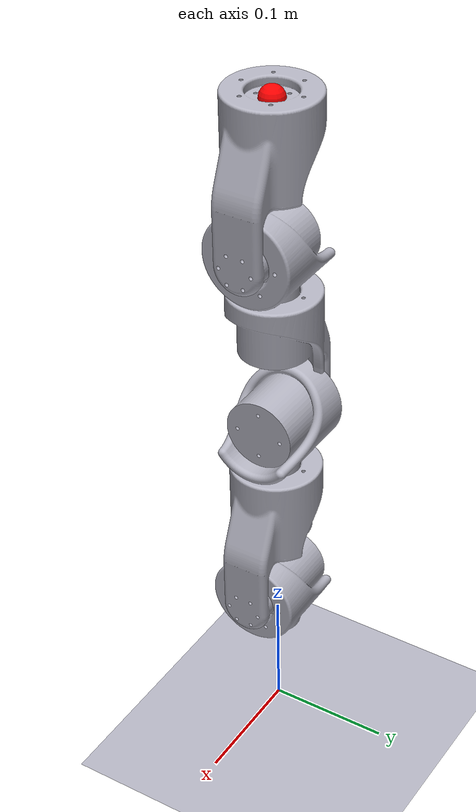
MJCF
<mujoco model="7DOF_RoboticArm_CAD_Updated">
    <compiler angle="radian" coordinate="local" meshdir="./"/>

    <option timestep="0.001" gravity="0 0 -9.81"/>

    <default>
        <joint damping="0.1"/>
        <geom type="cylinder" rgba="0.7 0.7 0.75 1"/>
    </default>

    <asset>
        <material name="robot_metal" rgba="0.7 0.7 0.75 1" specular="0.8" shininess="0.9"/>
        <material name="joint_dark" rgba="0.3 0.3 0.3 1" specular="0.9" shininess="0.9"/>
        <texture name="grid" type="2d" builtin="checker" width="512" height="512"
                 rgb1="0.2 0.2 0.2" rgb2="0.3 0.3 0.3"/>
        <material name="grid" texture="grid" texrepeat="8 8" reflectance="0.1"/>

        <!-- Mesh definitions -->
        <mesh name="link2_visual" file="Link2.stl" scale="0.001 0.001 0.001"/>
        <mesh name="link3_visual" file="Link3.stl" scale="0.001 0.001 0.001"/>
        <mesh name="link4_visual" file="Link4.stl" scale="0.001 0.001 0.001"/>
        <mesh name="link5_visual" file="Link5.stl" scale="0.001 0.001 0.001"/>
        <mesh name="link6_visual" file="Link6.stl" scale="0.001 0.001 0.001"/>
        <mesh name="link7_visual" file="Link7.stl" scale="0.001 0.001 0.001"/>
    </asset>

    <worldbody>
        <geom name="ground" type="plane" size="2 2 0.01" material="grid" pos="0 0 0"/>
        <light directional="true" pos="0 0 3" dir="0 0 -1" diffuse="0.8 0.8 0.8"/>
        <light directional="true" pos="1 1 2" dir="-0.5 -0.5 -1" diffuse="0.4 0.4 0.4"/>

        <!-- Link 2 - Joint1_CS -->
        <body name="link2" pos="0 0 0.08705">
            <joint name="joint_1" type="hinge" pos="0 0 0" axis="0 0 1"
                  />

            <!-- Visual mesh (no collision) -->
            <geom type="mesh" mesh="link2_visual"
                  contype="0" conaffinity="0" material="robot_metal"/>

            <!-- Collision cylinder (invisible) -->
            <geom type="cylinder" size="0.03 0.02362"
                  pos="0.00117 0 0.04602"
                  contype="1" conaffinity="1" rgba="0 0 0 0"/>

            <!-- Inertial - Joint1_CS -->
            <!-- Mass: 416.29g = 0.41629 kg -->
            <!-- COM: (1.17, 0.00, 46.02) mm = (0.00117, 0, 0.04602) m -->
            <!-- Lxx=196458.76, Lyy=221717.30, Lzz=214067.18 g·mm² -->
            <!-- Off-diagonal: Lxy=-0.31, Lxz=4287.79, Lyz=-0.43 g·mm² -->
            <inertial pos="0.00117 0 0.04602" mass="0.41629"
                      fullinertia="1.96459e-4 2.21717e-4 2.14067e-4 -3.1e-10 4.28779e-6 -4.3e-10"/>

            <!-- Link 3 - Joint2_CS -->
            <body name="link3" pos="0.02875 0 0.04725">
                <joint name="joint_2" type="hinge" pos="0 0 0" axis="1 0 0"
                       />

                <geom type="mesh" mesh="link3_visual"
                      contype="0" conaffinity="0" material="robot_metal"/>

                <geom type="cylinder" size="0.028 0.056375"
                      pos="-0.02576 0 0.08185"
                      contype="1" conaffinity="1" rgba="0 0 0 0"/>

                <!-- Inertial - Joint2_CS -->
                <!-- Mass: 431.84g = 0.43184 kg -->
                <!-- COM: (-25.76, 0.00, 81.85) mm = (-0.02576, 0, 0.08185) m -->
                <!-- Lxx=294317.80, Lyy=328155.47, Lzz=225828.11 g·mm² -->
                <!-- Off-diagonal: Lxy=0.90, Lxz=-52978.97, Lyz=0.31 g·mm² -->
                <inertial pos="-0.02576 0 0.08185" mass="0.43184"
                          fullinertia="2.94318e-4 3.28155e-4 2.25828e-4 9.0e-10 -5.29790e-5 3.1e-10"/>

                <!-- Link 4 - Joint3_CS -->
                <body name="link4" pos="-0.02875 0 0.11275">
                    <joint name="joint_3" type="hinge" pos="0 0 0" axis="0 0 1"
                           />

                    <geom type="mesh" mesh="link4_visual"
                          contype="0" conaffinity="0" material="joint_dark"/>

                    <geom type="cylinder" size="0.025 0.0236125"
                          pos="-0.00220 0 0.04598"
                          contype="1" conaffinity="1" rgba="0 0 0 0"/>

                    <!-- Inertial - Joint3_CS -->
                    <!-- Mass: 403.30g = 0.40330 kg -->
                    <!-- COM: (-2.20, 0.00, 45.98) mm = (-0.00220, 0, 0.04598) m -->
                    <!-- Lxx=192037.50, Lyy=206312.16, Lzz=198682.40 g·mm² -->
                    <!-- Off-diagonal: Lxy=-0.24, Lxz=-4815.60, Lyz=0.43 g·mm² -->
                    <inertial pos="-0.00220 0 0.04598" mass="0.40330"
                              fullinertia="1.92038e-4 2.06312e-4 1.98682e-4 -2.4e-10 -4.81560e-6 4.3e-10"/>

                    <!-- Link 5 - Joint4_CS -->
                    <body name="link5" pos="-0.02805 0 0.04725">
                        <joint name="joint_4" type="hinge" pos="0 0 0" axis="1 0 0"
                               />

                        <geom type="mesh" mesh="link5_visual"
                              contype="0" conaffinity="0" material="robot_metal"/>

                        <geom type="cylinder" size="0.022 0.056"
                              pos="0.02442 0 0.08532"
                              contype="1" conaffinity="1" rgba="0 0 0 0"/>

                        <!-- Inertial - Joint4_CS -->
                        <!-- Mass: 357.14g = 0.35714 kg -->
                        <!-- COM: (24.42, 0.00, 85.32) mm = (0.02442, 0, 0.08532) m -->
                        <!-- Lxx=244984.68, Lyy=278151.51, Lzz=195642.90 g·mm² -->
                        <!-- Off-diagonal: Lxy=0.90, Lxz=58077.63, Lyz=-0.30 g·mm² -->
                        <inertial pos="0.02442 0 0.08532" mass="0.35714"
                                  fullinertia="2.44985e-4 2.78152e-4 1.95643e-4 9.0e-10 5.80776e-5 -3.0e-10"/>

                        <!-- Link 6 - Joint5_CS -->
                        <body name="link6" pos="0.02805 0 0.112">
                            <joint name="joint_5" type="hinge" pos="0 0 0" axis="0 0 1"
                                   />

                            <geom type="mesh" mesh="link6_visual"
                                  contype="0" conaffinity="0" material="joint_dark"/>

                            <geom type="cylinder" size="0.02 0.0236125"
                                  pos="0.00560 0 0.04575"
                                  contype="1" conaffinity="1" rgba="0 0 0 0"/>

                            <!-- Inertial - Joint5_CS -->
                            <!-- Mass: 341.33g = 0.34133 kg -->
                            <!-- COM: (5.60, 0.00, 45.75) mm = (0.00560, 0, 0.04575) m -->
                            <!-- Lxx=166766.48, Lyy=158906.33, Lzz=151395.06 g·mm² -->
                            <!-- Off-diagonal: Lxy=-0.01, Lxz=6557.27, Lyz=-0.44 g·mm² -->
                            <inertial pos="0.00560 0 0.04575" mass="0.34133"
                                      fullinertia="1.66766e-4 1.58906e-4 1.51395e-4 -1.0e-11 6.55727e-6 -4.4e-10"/>

                            <!-- Link 7 - Joint6_CS -->
                            <body name="link7" pos="0.028 0 0.04725">
                                <joint name="joint_6" type="hinge" pos="0 0 0" axis="1 0 0"
                                       />

                                <geom type="mesh" mesh="link7_visual"
                                      contype="0" conaffinity="0" material="robot_metal"/>

                                <geom type="cylinder" size="0.02 0.056"
                                      pos="-0.02442 0 0.08532"
                                      contype="1" conaffinity="1" rgba="0 0 0 0"/>

                                <!-- Inertial - Joint6_CS -->
                                <!-- Mass: 357.14g = 0.35714 kg -->
                                <!-- COM: (-24.42, 0.00, 85.32) mm = (-0.02442, 0, 0.08532) m -->
                                <!-- Lxx=244984.68, Lyy=278151.66, Lzz=195642.92 g·mm² -->
                                <!-- Off-diagonal: Lxy=0.90, Lxz=-58077.75, Lyz=0.30 g·mm² -->
                                <inertial pos="-0.02442 0 0.08532" mass="0.35714"
                                          fullinertia="2.44985e-4 2.78152e-4 1.95643e-4 9.0e-10 -5.80778e-5 3.0e-10"/>

                                <site name="end_effector" pos="-0.028 0 0.112"
                                      size="0.01" rgba="1 0 0 1"/>
                            </body>
                        </body>
                    </body>
                </body>
            </body>
        </body>
    </worldbody>

    <actuator>
        <motor name="joint_1_motor" joint="joint_1"/>
        <motor name="joint_2_motor" joint="joint_2"/>
        <motor name="joint_3_motor" joint="joint_3"/>
        <motor name="joint_4_motor" joint="joint_4"/>
        <motor name="joint_5_motor" joint="joint_5"/>
        <motor name="joint_6_motor" joint="joint_6"/>
    </actuator>

    <sensor>
        <jointpos name="joint_1_pos" joint="joint_1"/>
        <jointpos name="joint_2_pos" joint="joint_2"/>
        <jointpos name="joint_3_pos" joint="joint_3"/>
        <jointpos name="joint_4_pos" joint="joint_4"/>
        <jointpos name="joint_5_pos" joint="joint_5"/>
        <jointpos name="joint_6_pos" joint="joint_6"/>

        <jointvel name="joint_1_vel" joint="joint_1"/>
        <jointvel name="joint_2_vel" joint="joint_2"/>
        <jointvel name="joint_3_vel" joint="joint_3"/>
        <jointvel name="joint_4_vel" joint="joint_4"/>
        <jointvel name="joint_5_vel" joint="joint_5"/>
        <jointvel name="joint_6_vel" joint="joint_6"/>

        <framepos name="ee_pos" objtype="site" objname="end_effector"/>
    </sensor>

</mujoco>
